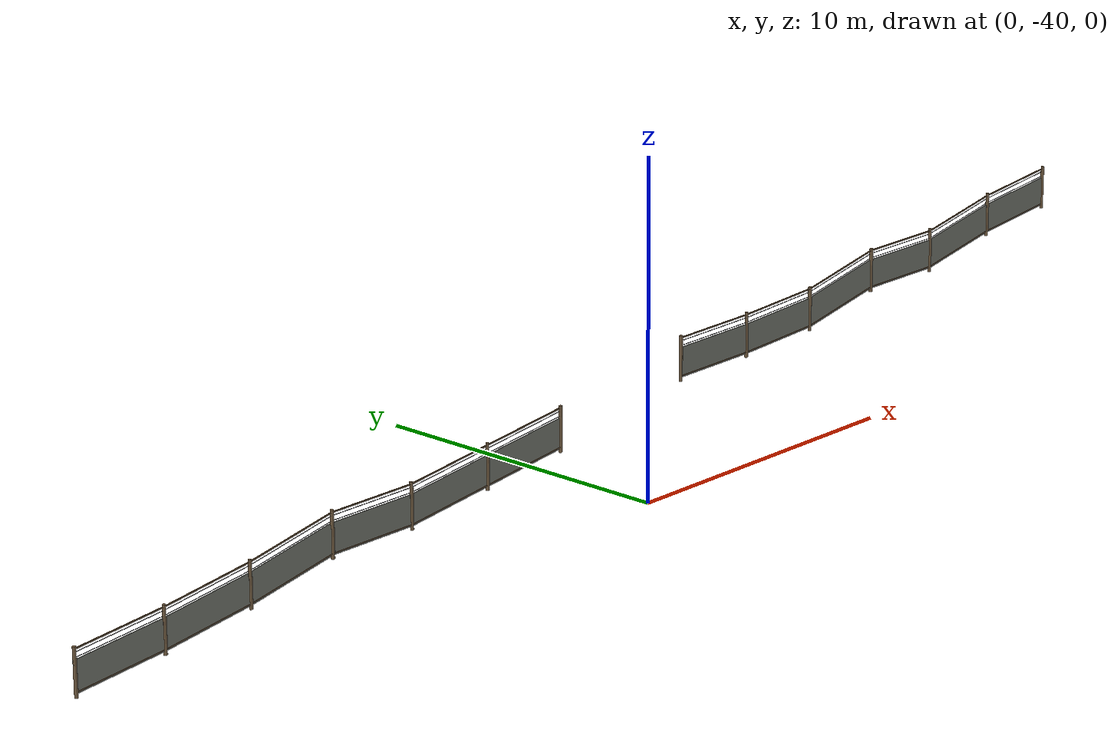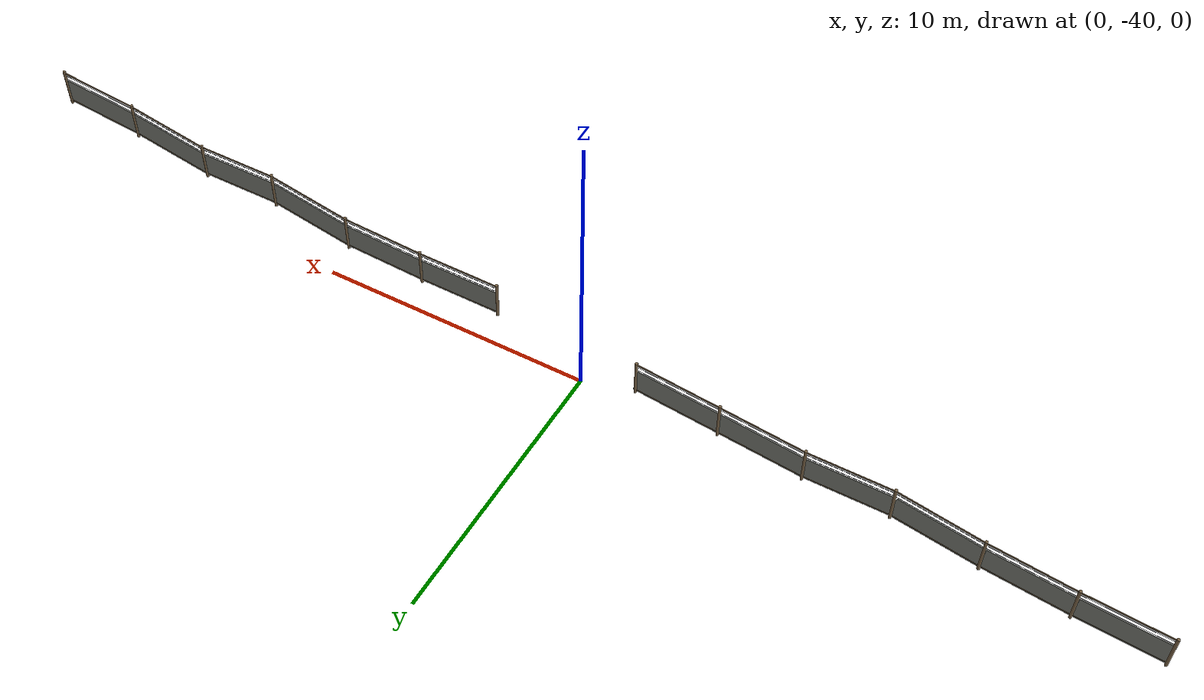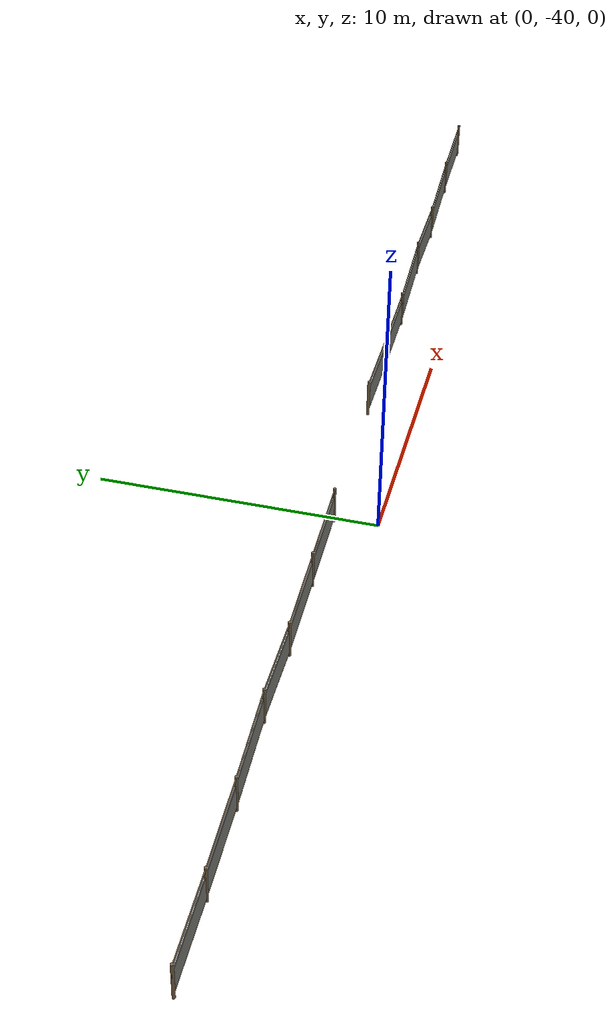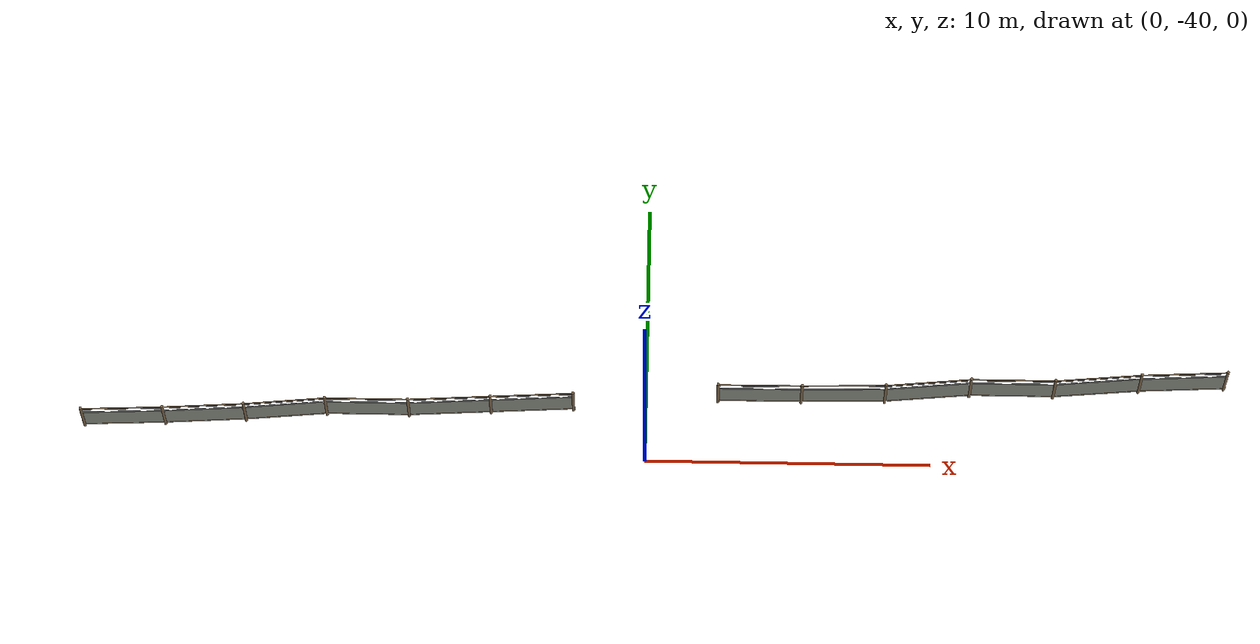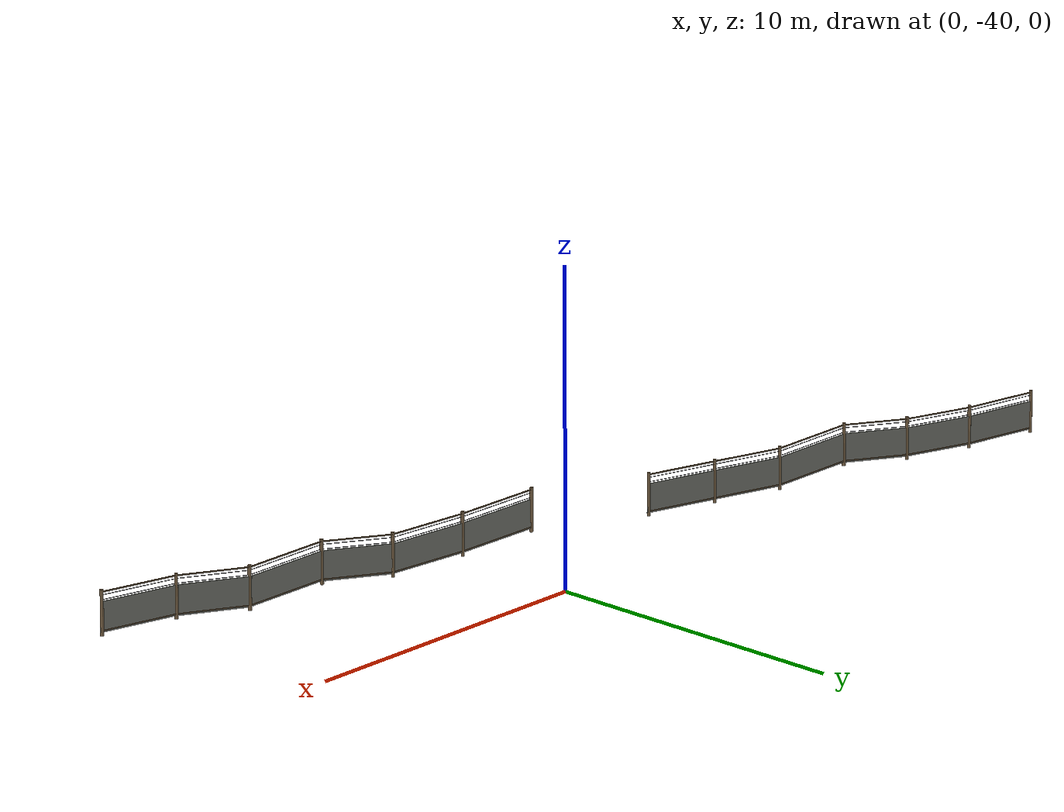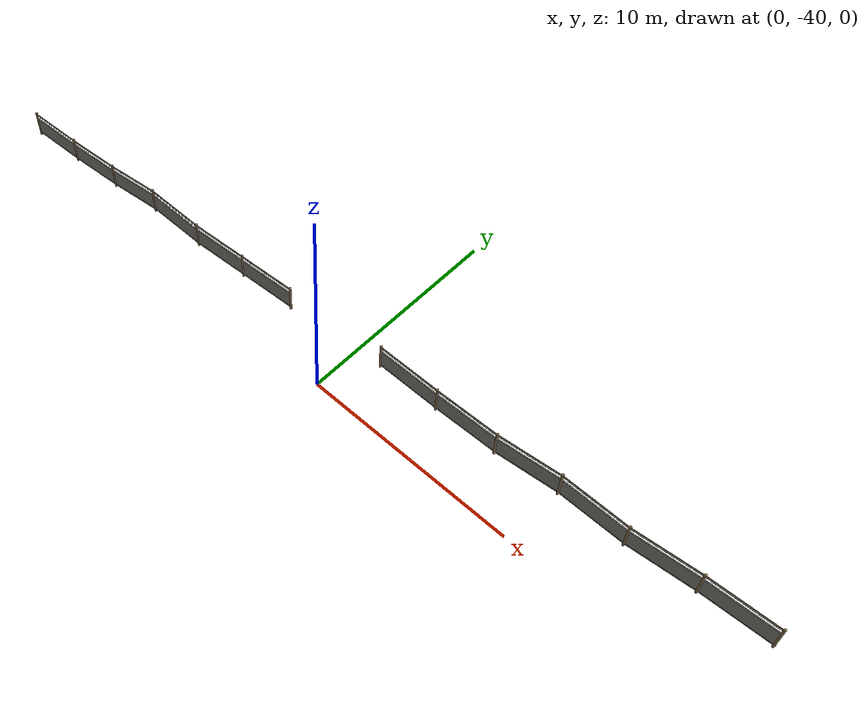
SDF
<sdf version="1.9">
 <world name="orchard_10x41">
  <model name="fence_S">
   <static>true</static>
   <link name="link">
    <visual name="post_1">
     <pose>-19.750 -39.000 0.785 0.0000 0.0000 0.0000</pose>
     <geometry><cylinder><radius>0.0500</radius><length>1.3500</length></cylinder></geometry>
     <material>
      <ambient>0.420 0.340 0.240 1</ambient>
      <diffuse>0.462 0.374 0.264 1</diffuse>
      <specular>0.126 0.102 0.072 1</specular>
     </material>
     <plugin filename="gz-sim-label-system" name="gz::sim::systems::Label"><label>60</label></plugin>
    </visual>
    <visual name="post_2">
     <pose>-16.875 -39.000 1.025 0.0000 0.0000 0.0000</pose>
     <geometry><cylinder><radius>0.0500</radius><length>1.3500</length></cylinder></geometry>
     <material>
      <ambient>0.420 0.340 0.240 1</ambient>
      <diffuse>0.462 0.374 0.264 1</diffuse>
      <specular>0.126 0.102 0.072 1</specular>
     </material>
     <plugin filename="gz-sim-label-system" name="gz::sim::systems::Label"><label>60</label></plugin>
    </visual>
    <visual name="post_3">
     <pose>-14.000 -39.000 1.392 0.0000 0.0000 0.0000</pose>
     <geometry><cylinder><radius>0.0500</radius><length>1.3500</length></cylinder></geometry>
     <material>
      <ambient>0.420 0.340 0.240 1</ambient>
      <diffuse>0.462 0.374 0.264 1</diffuse>
      <specular>0.126 0.102 0.072 1</specular>
     </material>
     <plugin filename="gz-sim-label-system" name="gz::sim::systems::Label"><label>60</label></plugin>
    </visual>
    <visual name="post_4">
     <pose>-11.125 -39.000 1.938 0.0000 0.0000 0.0000</pose>
     <geometry><cylinder><radius>0.0500</radius><length>1.3500</length></cylinder></geometry>
     <material>
      <ambient>0.420 0.340 0.240 1</ambient>
      <diffuse>0.462 0.374 0.264 1</diffuse>
      <specular>0.126 0.102 0.072 1</specular>
     </material>
     <plugin filename="gz-sim-label-system" name="gz::sim::systems::Label"><label>60</label></plugin>
    </visual>
    <visual name="post_5">
     <pose>-8.250 -39.000 1.937 0.0000 0.0000 0.0000</pose>
     <geometry><cylinder><radius>0.0500</radius><length>1.3500</length></cylinder></geometry>
     <material>
      <ambient>0.420 0.340 0.240 1</ambient>
      <diffuse>0.462 0.374 0.264 1</diffuse>
      <specular>0.126 0.102 0.072 1</specular>
     </material>
     <plugin filename="gz-sim-label-system" name="gz::sim::systems::Label"><label>60</label></plugin>
    </visual>
    <visual name="post_6">
     <pose>-5.375 -39.000 2.276 0.0000 0.0000 0.0000</pose>
     <geometry><cylinder><radius>0.0500</radius><length>1.3500</length></cylinder></geometry>
     <material>
      <ambient>0.420 0.340 0.240 1</ambient>
      <diffuse>0.462 0.374 0.264 1</diffuse>
      <specular>0.126 0.102 0.072 1</specular>
     </material>
     <plugin filename="gz-sim-label-system" name="gz::sim::systems::Label"><label>60</label></plugin>
    </visual>
    <visual name="post_7">
     <pose>-2.500 -39.000 2.610 0.0000 0.0000 0.0000</pose>
     <geometry><cylinder><radius>0.0500</radius><length>1.3500</length></cylinder></geometry>
     <material>
      <ambient>0.420 0.340 0.240 1</ambient>
      <diffuse>0.462 0.374 0.264 1</diffuse>
      <specular>0.126 0.102 0.072 1</specular>
     </material>
     <plugin filename="gz-sim-label-system" name="gz::sim::systems::Label"><label>60</label></plugin>
    </visual>
    <visual name="mesh_8">
     <pose>-18.312 -39.000 0.780 0.0000 -0.0836 0.0000</pose>
     <geometry><box><size>2.9325 0.0200 0.9000</size></box></geometry>
     <material>
      <ambient>0.460 0.470 0.440 1</ambient>
      <diffuse>0.506 0.517 0.484 1</diffuse>
      <specular>0.138 0.141 0.132 1</specular>
     </material>
     <plugin filename="gz-sim-label-system" name="gz::sim::systems::Label"><label>60</label></plugin>
    </visual>
    <visual name="rail_9">
     <pose>-18.312 -39.000 0.380 0.0000 -0.0836 0.0000</pose>
     <geometry><box><size>2.9325 0.0350 0.0350</size></box></geometry>
     <material>
      <ambient>0.380 0.310 0.220 1</ambient>
      <diffuse>0.418 0.341 0.242 1</diffuse>
      <specular>0.114 0.093 0.066 1</specular>
     </material>
     <plugin filename="gz-sim-label-system" name="gz::sim::systems::Label"><label>60</label></plugin>
    </visual>
    <visual name="rail_10">
     <pose>-18.312 -39.000 1.510 0.0000 -0.0836 0.0000</pose>
     <geometry><box><size>2.9325 0.0350 0.0350</size></box></geometry>
     <material>
      <ambient>0.380 0.310 0.220 1</ambient>
      <diffuse>0.418 0.341 0.242 1</diffuse>
      <specular>0.114 0.093 0.066 1</specular>
     </material>
     <plugin filename="gz-sim-label-system" name="gz::sim::systems::Label"><label>60</label></plugin>
    </visual>
    <visual name="wire_11">
     <pose>-18.312 -39.000 1.280 0.0000 -0.0836 0.0000</pose>
     <geometry><box><size>2.9325 0.0120 0.0120</size></box></geometry>
     <material>
      <ambient>0.300 0.300 0.320 1</ambient>
      <diffuse>0.330 0.330 0.352 1</diffuse>
      <specular>0.090 0.090 0.096 1</specular>
     </material>
     <plugin filename="gz-sim-label-system" name="gz::sim::systems::Label"><label>60</label></plugin>
    </visual>
    <visual name="wire_12">
     <pose>-18.312 -39.000 1.420 0.0000 -0.0836 0.0000</pose>
     <geometry><box><size>2.9325 0.0120 0.0120</size></box></geometry>
     <material>
      <ambient>0.300 0.300 0.320 1</ambient>
      <diffuse>0.330 0.330 0.352 1</diffuse>
      <specular>0.090 0.090 0.096 1</specular>
     </material>
     <plugin filename="gz-sim-label-system" name="gz::sim::systems::Label"><label>60</label></plugin>
    </visual>
    <visual name="mesh_13">
     <pose>-15.438 -39.000 1.084 0.0000 -0.1268 0.0000</pose>
     <geometry><box><size>2.9325 0.0200 0.9000</size></box></geometry>
     <material>
      <ambient>0.460 0.470 0.440 1</ambient>
      <diffuse>0.506 0.517 0.484 1</diffuse>
      <specular>0.138 0.141 0.132 1</specular>
     </material>
     <plugin filename="gz-sim-label-system" name="gz::sim::systems::Label"><label>60</label></plugin>
    </visual>
    <visual name="rail_14">
     <pose>-15.438 -39.000 0.684 0.0000 -0.1268 0.0000</pose>
     <geometry><box><size>2.9325 0.0350 0.0350</size></box></geometry>
     <material>
      <ambient>0.380 0.310 0.220 1</ambient>
      <diffuse>0.418 0.341 0.242 1</diffuse>
      <specular>0.114 0.093 0.066 1</specular>
     </material>
     <plugin filename="gz-sim-label-system" name="gz::sim::systems::Label"><label>60</label></plugin>
    </visual>
    <visual name="rail_15">
     <pose>-15.438 -39.000 1.814 0.0000 -0.1268 0.0000</pose>
     <geometry><box><size>2.9325 0.0350 0.0350</size></box></geometry>
     <material>
      <ambient>0.380 0.310 0.220 1</ambient>
      <diffuse>0.418 0.341 0.242 1</diffuse>
      <specular>0.114 0.093 0.066 1</specular>
     </material>
     <plugin filename="gz-sim-label-system" name="gz::sim::systems::Label"><label>60</label></plugin>
    </visual>
    <visual name="wire_16">
     <pose>-15.438 -39.000 1.584 0.0000 -0.1268 0.0000</pose>
     <geometry><box><size>2.9325 0.0120 0.0120</size></box></geometry>
     <material>
      <ambient>0.300 0.300 0.320 1</ambient>
      <diffuse>0.330 0.330 0.352 1</diffuse>
      <specular>0.090 0.090 0.096 1</specular>
     </material>
     <plugin filename="gz-sim-label-system" name="gz::sim::systems::Label"><label>60</label></plugin>
    </visual>
    <visual name="wire_17">
     <pose>-15.438 -39.000 1.724 0.0000 -0.1268 0.0000</pose>
     <geometry><box><size>2.9325 0.0120 0.0120</size></box></geometry>
     <material>
      <ambient>0.300 0.300 0.320 1</ambient>
      <diffuse>0.330 0.330 0.352 1</diffuse>
      <specular>0.090 0.090 0.096 1</specular>
     </material>
     <plugin filename="gz-sim-label-system" name="gz::sim::systems::Label"><label>60</label></plugin>
    </visual>
    <visual name="mesh_18">
     <pose>-12.562 -39.000 1.540 0.0000 -0.1877 0.0000</pose>
     <geometry><box><size>2.9325 0.0200 0.9000</size></box></geometry>
     <material>
      <ambient>0.460 0.470 0.440 1</ambient>
      <diffuse>0.506 0.517 0.484 1</diffuse>
      <specular>0.138 0.141 0.132 1</specular>
     </material>
     <plugin filename="gz-sim-label-system" name="gz::sim::systems::Label"><label>60</label></plugin>
    </visual>
    <visual name="rail_19">
     <pose>-12.562 -39.000 1.140 0.0000 -0.1877 0.0000</pose>
     <geometry><box><size>2.9325 0.0350 0.0350</size></box></geometry>
     <material>
      <ambient>0.380 0.310 0.220 1</ambient>
      <diffuse>0.418 0.341 0.242 1</diffuse>
      <specular>0.114 0.093 0.066 1</specular>
     </material>
     <plugin filename="gz-sim-label-system" name="gz::sim::systems::Label"><label>60</label></plugin>
    </visual>
    <visual name="rail_20">
     <pose>-12.562 -39.000 2.270 0.0000 -0.1877 0.0000</pose>
     <geometry><box><size>2.9325 0.0350 0.0350</size></box></geometry>
     <material>
      <ambient>0.380 0.310 0.220 1</ambient>
      <diffuse>0.418 0.341 0.242 1</diffuse>
      <specular>0.114 0.093 0.066 1</specular>
     </material>
     <plugin filename="gz-sim-label-system" name="gz::sim::systems::Label"><label>60</label></plugin>
    </visual>
    <visual name="wire_21">
     <pose>-12.562 -39.000 2.040 0.0000 -0.1877 0.0000</pose>
     <geometry><box><size>2.9325 0.0120 0.0120</size></box></geometry>
     <material>
      <ambient>0.300 0.300 0.320 1</ambient>
      <diffuse>0.330 0.330 0.352 1</diffuse>
      <specular>0.090 0.090 0.096 1</specular>
     </material>
     <plugin filename="gz-sim-label-system" name="gz::sim::systems::Label"><label>60</label></plugin>
    </visual>
    <visual name="wire_22">
     <pose>-12.562 -39.000 2.180 0.0000 -0.1877 0.0000</pose>
     <geometry><box><size>2.9325 0.0120 0.0120</size></box></geometry>
     <material>
      <ambient>0.300 0.300 0.320 1</ambient>
      <diffuse>0.330 0.330 0.352 1</diffuse>
      <specular>0.090 0.090 0.096 1</specular>
     </material>
     <plugin filename="gz-sim-label-system" name="gz::sim::systems::Label"><label>60</label></plugin>
    </visual>
    <visual name="mesh_23">
     <pose>-9.688 -39.000 1.813 0.0000 0.0003 0.0000</pose>
     <geometry><box><size>2.9325 0.0200 0.9000</size></box></geometry>
     <material>
      <ambient>0.460 0.470 0.440 1</ambient>
      <diffuse>0.506 0.517 0.484 1</diffuse>
      <specular>0.138 0.141 0.132 1</specular>
     </material>
     <plugin filename="gz-sim-label-system" name="gz::sim::systems::Label"><label>60</label></plugin>
    </visual>
    <visual name="rail_24">
     <pose>-9.688 -39.000 1.413 0.0000 0.0003 0.0000</pose>
     <geometry><box><size>2.9325 0.0350 0.0350</size></box></geometry>
     <material>
      <ambient>0.380 0.310 0.220 1</ambient>
      <diffuse>0.418 0.341 0.242 1</diffuse>
      <specular>0.114 0.093 0.066 1</specular>
     </material>
     <plugin filename="gz-sim-label-system" name="gz::sim::systems::Label"><label>60</label></plugin>
    </visual>
    <visual name="rail_25">
     <pose>-9.688 -39.000 2.543 0.0000 0.0003 0.0000</pose>
     <geometry><box><size>2.9325 0.0350 0.0350</size></box></geometry>
     <material>
      <ambient>0.380 0.310 0.220 1</ambient>
      <diffuse>0.418 0.341 0.242 1</diffuse>
      <specular>0.114 0.093 0.066 1</specular>
     </material>
     <plugin filename="gz-sim-label-system" name="gz::sim::systems::Label"><label>60</label></plugin>
    </visual>
    <visual name="wire_26">
     <pose>-9.688 -39.000 2.313 0.0000 0.0003 0.0000</pose>
     <geometry><box><size>2.9325 0.0120 0.0120</size></box></geometry>
     <material>
      <ambient>0.300 0.300 0.320 1</ambient>
      <diffuse>0.330 0.330 0.352 1</diffuse>
      <specular>0.090 0.090 0.096 1</specular>
     </material>
     <plugin filename="gz-sim-label-system" name="gz::sim::systems::Label"><label>60</label></plugin>
    </visual>
    <visual name="wire_27">
     <pose>-9.688 -39.000 2.453 0.0000 0.0003 0.0000</pose>
     <geometry><box><size>2.9325 0.0120 0.0120</size></box></geometry>
     <material>
      <ambient>0.300 0.300 0.320 1</ambient>
      <diffuse>0.330 0.330 0.352 1</diffuse>
      <specular>0.090 0.090 0.096 1</specular>
     </material>
     <plugin filename="gz-sim-label-system" name="gz::sim::systems::Label"><label>60</label></plugin>
    </visual>
    <visual name="mesh_28">
     <pose>-6.812 -39.000 1.982 0.0000 -0.1172 0.0000</pose>
     <geometry><box><size>2.9325 0.0200 0.9000</size></box></geometry>
     <material>
      <ambient>0.460 0.470 0.440 1</ambient>
      <diffuse>0.506 0.517 0.484 1</diffuse>
      <specular>0.138 0.141 0.132 1</specular>
     </material>
     <plugin filename="gz-sim-label-system" name="gz::sim::systems::Label"><label>60</label></plugin>
    </visual>
    <visual name="rail_29">
     <pose>-6.812 -39.000 1.582 0.0000 -0.1172 0.0000</pose>
     <geometry><box><size>2.9325 0.0350 0.0350</size></box></geometry>
     <material>
      <ambient>0.380 0.310 0.220 1</ambient>
      <diffuse>0.418 0.341 0.242 1</diffuse>
      <specular>0.114 0.093 0.066 1</specular>
     </material>
     <plugin filename="gz-sim-label-system" name="gz::sim::systems::Label"><label>60</label></plugin>
    </visual>
    <visual name="rail_30">
     <pose>-6.812 -39.000 2.712 0.0000 -0.1172 0.0000</pose>
     <geometry><box><size>2.9325 0.0350 0.0350</size></box></geometry>
     <material>
      <ambient>0.380 0.310 0.220 1</ambient>
      <diffuse>0.418 0.341 0.242 1</diffuse>
      <specular>0.114 0.093 0.066 1</specular>
     </material>
     <plugin filename="gz-sim-label-system" name="gz::sim::systems::Label"><label>60</label></plugin>
    </visual>
    <visual name="wire_31">
     <pose>-6.812 -39.000 2.482 0.0000 -0.1172 0.0000</pose>
     <geometry><box><size>2.9325 0.0120 0.0120</size></box></geometry>
     <material>
      <ambient>0.300 0.300 0.320 1</ambient>
      <diffuse>0.330 0.330 0.352 1</diffuse>
      <specular>0.090 0.090 0.096 1</specular>
     </material>
     <plugin filename="gz-sim-label-system" name="gz::sim::systems::Label"><label>60</label></plugin>
    </visual>
    <visual name="wire_32">
     <pose>-6.812 -39.000 2.622 0.0000 -0.1172 0.0000</pose>
     <geometry><box><size>2.9325 0.0120 0.0120</size></box></geometry>
     <material>
      <ambient>0.300 0.300 0.320 1</ambient>
      <diffuse>0.330 0.330 0.352 1</diffuse>
      <specular>0.090 0.090 0.096 1</specular>
     </material>
     <plugin filename="gz-sim-label-system" name="gz::sim::systems::Label"><label>60</label></plugin>
    </visual>
    <visual name="mesh_33">
     <pose>-3.938 -39.000 2.318 0.0000 -0.1159 0.0000</pose>
     <geometry><box><size>2.9325 0.0200 0.9000</size></box></geometry>
     <material>
      <ambient>0.460 0.470 0.440 1</ambient>
      <diffuse>0.506 0.517 0.484 1</diffuse>
      <specular>0.138 0.141 0.132 1</specular>
     </material>
     <plugin filename="gz-sim-label-system" name="gz::sim::systems::Label"><label>60</label></plugin>
    </visual>
    <visual name="rail_34">
     <pose>-3.938 -39.000 1.918 0.0000 -0.1159 0.0000</pose>
     <geometry><box><size>2.9325 0.0350 0.0350</size></box></geometry>
     <material>
      <ambient>0.380 0.310 0.220 1</ambient>
      <diffuse>0.418 0.341 0.242 1</diffuse>
      <specular>0.114 0.093 0.066 1</specular>
     </material>
     <plugin filename="gz-sim-label-system" name="gz::sim::systems::Label"><label>60</label></plugin>
    </visual>
    <visual name="rail_35">
     <pose>-3.938 -39.000 3.048 0.0000 -0.1159 0.0000</pose>
     <geometry><box><size>2.9325 0.0350 0.0350</size></box></geometry>
     <material>
      <ambient>0.380 0.310 0.220 1</ambient>
      <diffuse>0.418 0.341 0.242 1</diffuse>
      <specular>0.114 0.093 0.066 1</specular>
     </material>
     <plugin filename="gz-sim-label-system" name="gz::sim::systems::Label"><label>60</label></plugin>
    </visual>
    <visual name="wire_36">
     <pose>-3.938 -39.000 2.818 0.0000 -0.1159 0.0000</pose>
     <geometry><box><size>2.9325 0.0120 0.0120</size></box></geometry>
     <material>
      <ambient>0.300 0.300 0.320 1</ambient>
      <diffuse>0.330 0.330 0.352 1</diffuse>
      <specular>0.090 0.090 0.096 1</specular>
     </material>
     <plugin filename="gz-sim-label-system" name="gz::sim::systems::Label"><label>60</label></plugin>
    </visual>
    <visual name="wire_37">
     <pose>-3.938 -39.000 2.958 0.0000 -0.1159 0.0000</pose>
     <geometry><box><size>2.9325 0.0120 0.0120</size></box></geometry>
     <material>
      <ambient>0.300 0.300 0.320 1</ambient>
      <diffuse>0.330 0.330 0.352 1</diffuse>
      <specular>0.090 0.090 0.096 1</specular>
     </material>
     <plugin filename="gz-sim-label-system" name="gz::sim::systems::Label"><label>60</label></plugin>
    </visual>
    <collision name="c0">
     <pose>-18.312 -39.000 0.905 0.0000 -0.0836 0.0000</pose>
     <geometry><box><size>2.8750 0.0600 1.3500</size></box></geometry>
    </collision>
    <collision name="c1">
     <pose>-15.438 -39.000 1.209 0.0000 -0.1268 0.0000</pose>
     <geometry><box><size>2.8750 0.0600 1.3500</size></box></geometry>
    </collision>
    <collision name="c2">
     <pose>-12.562 -39.000 1.665 0.0000 -0.1877 0.0000</pose>
     <geometry><box><size>2.8750 0.0600 1.3500</size></box></geometry>
    </collision>
    <collision name="c3">
     <pose>-9.688 -39.000 1.938 0.0000 0.0003 0.0000</pose>
     <geometry><box><size>2.8750 0.0600 1.3500</size></box></geometry>
    </collision>
    <collision name="c4">
     <pose>-6.812 -39.000 2.107 0.0000 -0.1172 0.0000</pose>
     <geometry><box><size>2.8750 0.0600 1.3500</size></box></geometry>
    </collision>
    <collision name="c5">
     <pose>-3.938 -39.000 2.443 0.0000 -0.1159 0.0000</pose>
     <geometry><box><size>2.8750 0.0600 1.3500</size></box></geometry>
    </collision>
   </link>
  </model>
  <model name="fence_S2">
   <static>true</static>
   <link name="link">
    <visual name="post_1">
     <pose>2.500 -39.000 3.447 0.0000 0.0000 0.0000</pose>
     <geometry><cylinder><radius>0.0500</radius><length>1.3500</length></cylinder></geometry>
     <material>
      <ambient>0.420 0.340 0.240 1</ambient>
      <diffuse>0.462 0.374 0.264 1</diffuse>
      <specular>0.126 0.102 0.072 1</specular>
     </material>
     <plugin filename="gz-sim-label-system" name="gz::sim::systems::Label"><label>60</label></plugin>
    </visual>
    <visual name="post_2">
     <pose>5.375 -39.000 3.471 0.0000 0.0000 0.0000</pose>
     <geometry><cylinder><radius>0.0500</radius><length>1.3500</length></cylinder></geometry>
     <material>
      <ambient>0.420 0.340 0.240 1</ambient>
      <diffuse>0.462 0.374 0.264 1</diffuse>
      <specular>0.126 0.102 0.072 1</specular>
     </material>
     <plugin filename="gz-sim-label-system" name="gz::sim::systems::Label"><label>60</label></plugin>
    </visual>
    <visual name="post_3">
     <pose>8.250 -39.000 3.603 0.0000 0.0000 0.0000</pose>
     <geometry><cylinder><radius>0.0500</radius><length>1.3500</length></cylinder></geometry>
     <material>
      <ambient>0.420 0.340 0.240 1</ambient>
      <diffuse>0.462 0.374 0.264 1</diffuse>
      <specular>0.126 0.102 0.072 1</specular>
     </material>
     <plugin filename="gz-sim-label-system" name="gz::sim::systems::Label"><label>60</label></plugin>
    </visual>
    <visual name="post_4">
     <pose>11.125 -39.000 4.157 0.0000 0.0000 0.0000</pose>
     <geometry><cylinder><radius>0.0500</radius><length>1.3500</length></cylinder></geometry>
     <material>
      <ambient>0.420 0.340 0.240 1</ambient>
      <diffuse>0.462 0.374 0.264 1</diffuse>
      <specular>0.126 0.102 0.072 1</specular>
     </material>
     <plugin filename="gz-sim-label-system" name="gz::sim::systems::Label"><label>60</label></plugin>
    </visual>
    <visual name="post_5">
     <pose>14.000 -39.000 4.156 0.0000 0.0000 0.0000</pose>
     <geometry><cylinder><radius>0.0500</radius><length>1.3500</length></cylinder></geometry>
     <material>
      <ambient>0.420 0.340 0.240 1</ambient>
      <diffuse>0.462 0.374 0.264 1</diffuse>
      <specular>0.126 0.102 0.072 1</specular>
     </material>
     <plugin filename="gz-sim-label-system" name="gz::sim::systems::Label"><label>60</label></plugin>
    </visual>
    <visual name="post_6">
     <pose>16.875 -39.000 4.683 0.0000 0.0000 0.0000</pose>
     <geometry><cylinder><radius>0.0500</radius><length>1.3500</length></cylinder></geometry>
     <material>
      <ambient>0.420 0.340 0.240 1</ambient>
      <diffuse>0.462 0.374 0.264 1</diffuse>
      <specular>0.126 0.102 0.072 1</specular>
     </material>
     <plugin filename="gz-sim-label-system" name="gz::sim::systems::Label"><label>60</label></plugin>
    </visual>
    <visual name="post_7">
     <pose>19.750 -39.000 4.973 0.0000 0.0000 0.0000</pose>
     <geometry><cylinder><radius>0.0500</radius><length>1.3500</length></cylinder></geometry>
     <material>
      <ambient>0.420 0.340 0.240 1</ambient>
      <diffuse>0.462 0.374 0.264 1</diffuse>
      <specular>0.126 0.102 0.072 1</specular>
     </material>
     <plugin filename="gz-sim-label-system" name="gz::sim::systems::Label"><label>60</label></plugin>
    </visual>
    <visual name="mesh_8">
     <pose>3.938 -39.000 3.334 0.0000 -0.0081 0.0000</pose>
     <geometry><box><size>2.9325 0.0200 0.9000</size></box></geometry>
     <material>
      <ambient>0.460 0.470 0.440 1</ambient>
      <diffuse>0.506 0.517 0.484 1</diffuse>
      <specular>0.138 0.141 0.132 1</specular>
     </material>
     <plugin filename="gz-sim-label-system" name="gz::sim::systems::Label"><label>60</label></plugin>
    </visual>
    <visual name="rail_9">
     <pose>3.938 -39.000 2.934 0.0000 -0.0081 0.0000</pose>
     <geometry><box><size>2.9325 0.0350 0.0350</size></box></geometry>
     <material>
      <ambient>0.380 0.310 0.220 1</ambient>
      <diffuse>0.418 0.341 0.242 1</diffuse>
      <specular>0.114 0.093 0.066 1</specular>
     </material>
     <plugin filename="gz-sim-label-system" name="gz::sim::systems::Label"><label>60</label></plugin>
    </visual>
    <visual name="rail_10">
     <pose>3.938 -39.000 4.064 0.0000 -0.0081 0.0000</pose>
     <geometry><box><size>2.9325 0.0350 0.0350</size></box></geometry>
     <material>
      <ambient>0.380 0.310 0.220 1</ambient>
      <diffuse>0.418 0.341 0.242 1</diffuse>
      <specular>0.114 0.093 0.066 1</specular>
     </material>
     <plugin filename="gz-sim-label-system" name="gz::sim::systems::Label"><label>60</label></plugin>
    </visual>
    <visual name="wire_11">
     <pose>3.938 -39.000 3.834 0.0000 -0.0081 0.0000</pose>
     <geometry><box><size>2.9325 0.0120 0.0120</size></box></geometry>
     <material>
      <ambient>0.300 0.300 0.320 1</ambient>
      <diffuse>0.330 0.330 0.352 1</diffuse>
      <specular>0.090 0.090 0.096 1</specular>
     </material>
     <plugin filename="gz-sim-label-system" name="gz::sim::systems::Label"><label>60</label></plugin>
    </visual>
    <visual name="wire_12">
     <pose>3.938 -39.000 3.974 0.0000 -0.0081 0.0000</pose>
     <geometry><box><size>2.9325 0.0120 0.0120</size></box></geometry>
     <material>
      <ambient>0.300 0.300 0.320 1</ambient>
      <diffuse>0.330 0.330 0.352 1</diffuse>
      <specular>0.090 0.090 0.096 1</specular>
     </material>
     <plugin filename="gz-sim-label-system" name="gz::sim::systems::Label"><label>60</label></plugin>
    </visual>
    <visual name="mesh_13">
     <pose>6.812 -39.000 3.412 0.0000 -0.0462 0.0000</pose>
     <geometry><box><size>2.9325 0.0200 0.9000</size></box></geometry>
     <material>
      <ambient>0.460 0.470 0.440 1</ambient>
      <diffuse>0.506 0.517 0.484 1</diffuse>
      <specular>0.138 0.141 0.132 1</specular>
     </material>
     <plugin filename="gz-sim-label-system" name="gz::sim::systems::Label"><label>60</label></plugin>
    </visual>
    <visual name="rail_14">
     <pose>6.812 -39.000 3.012 0.0000 -0.0462 0.0000</pose>
     <geometry><box><size>2.9325 0.0350 0.0350</size></box></geometry>
     <material>
      <ambient>0.380 0.310 0.220 1</ambient>
      <diffuse>0.418 0.341 0.242 1</diffuse>
      <specular>0.114 0.093 0.066 1</specular>
     </material>
     <plugin filename="gz-sim-label-system" name="gz::sim::systems::Label"><label>60</label></plugin>
    </visual>
    <visual name="rail_15">
     <pose>6.812 -39.000 4.142 0.0000 -0.0462 0.0000</pose>
     <geometry><box><size>2.9325 0.0350 0.0350</size></box></geometry>
     <material>
      <ambient>0.380 0.310 0.220 1</ambient>
      <diffuse>0.418 0.341 0.242 1</diffuse>
      <specular>0.114 0.093 0.066 1</specular>
     </material>
     <plugin filename="gz-sim-label-system" name="gz::sim::systems::Label"><label>60</label></plugin>
    </visual>
    <visual name="wire_16">
     <pose>6.812 -39.000 3.912 0.0000 -0.0462 0.0000</pose>
     <geometry><box><size>2.9325 0.0120 0.0120</size></box></geometry>
     <material>
      <ambient>0.300 0.300 0.320 1</ambient>
      <diffuse>0.330 0.330 0.352 1</diffuse>
      <specular>0.090 0.090 0.096 1</specular>
     </material>
     <plugin filename="gz-sim-label-system" name="gz::sim::systems::Label"><label>60</label></plugin>
    </visual>
    <visual name="wire_17">
     <pose>6.812 -39.000 4.052 0.0000 -0.0462 0.0000</pose>
     <geometry><box><size>2.9325 0.0120 0.0120</size></box></geometry>
     <material>
      <ambient>0.300 0.300 0.320 1</ambient>
      <diffuse>0.330 0.330 0.352 1</diffuse>
      <specular>0.090 0.090 0.096 1</specular>
     </material>
     <plugin filename="gz-sim-label-system" name="gz::sim::systems::Label"><label>60</label></plugin>
    </visual>
    <visual name="mesh_18">
     <pose>9.688 -39.000 3.755 0.0000 -0.1901 0.0000</pose>
     <geometry><box><size>2.9325 0.0200 0.9000</size></box></geometry>
     <material>
      <ambient>0.460 0.470 0.440 1</ambient>
      <diffuse>0.506 0.517 0.484 1</diffuse>
      <specular>0.138 0.141 0.132 1</specular>
     </material>
     <plugin filename="gz-sim-label-system" name="gz::sim::systems::Label"><label>60</label></plugin>
    </visual>
    <visual name="rail_19">
     <pose>9.688 -39.000 3.355 0.0000 -0.1901 0.0000</pose>
     <geometry><box><size>2.9325 0.0350 0.0350</size></box></geometry>
     <material>
      <ambient>0.380 0.310 0.220 1</ambient>
      <diffuse>0.418 0.341 0.242 1</diffuse>
      <specular>0.114 0.093 0.066 1</specular>
     </material>
     <plugin filename="gz-sim-label-system" name="gz::sim::systems::Label"><label>60</label></plugin>
    </visual>
    <visual name="rail_20">
     <pose>9.688 -39.000 4.485 0.0000 -0.1901 0.0000</pose>
     <geometry><box><size>2.9325 0.0350 0.0350</size></box></geometry>
     <material>
      <ambient>0.380 0.310 0.220 1</ambient>
      <diffuse>0.418 0.341 0.242 1</diffuse>
      <specular>0.114 0.093 0.066 1</specular>
     </material>
     <plugin filename="gz-sim-label-system" name="gz::sim::systems::Label"><label>60</label></plugin>
    </visual>
    <visual name="wire_21">
     <pose>9.688 -39.000 4.255 0.0000 -0.1901 0.0000</pose>
     <geometry><box><size>2.9325 0.0120 0.0120</size></box></geometry>
     <material>
      <ambient>0.300 0.300 0.320 1</ambient>
      <diffuse>0.330 0.330 0.352 1</diffuse>
      <specular>0.090 0.090 0.096 1</specular>
     </material>
     <plugin filename="gz-sim-label-system" name="gz::sim::systems::Label"><label>60</label></plugin>
    </visual>
    <visual name="wire_22">
     <pose>9.688 -39.000 4.395 0.0000 -0.1901 0.0000</pose>
     <geometry><box><size>2.9325 0.0120 0.0120</size></box></geometry>
     <material>
      <ambient>0.300 0.300 0.320 1</ambient>
      <diffuse>0.330 0.330 0.352 1</diffuse>
      <specular>0.090 0.090 0.096 1</specular>
     </material>
     <plugin filename="gz-sim-label-system" name="gz::sim::systems::Label"><label>60</label></plugin>
    </visual>
    <visual name="mesh_23">
     <pose>12.562 -39.000 4.032 0.0000 0.0001 0.0000</pose>
     <geometry><box><size>2.9325 0.0200 0.9000</size></box></geometry>
     <material>
      <ambient>0.460 0.470 0.440 1</ambient>
      <diffuse>0.506 0.517 0.484 1</diffuse>
      <specular>0.138 0.141 0.132 1</specular>
     </material>
     <plugin filename="gz-sim-label-system" name="gz::sim::systems::Label"><label>60</label></plugin>
    </visual>
    <visual name="rail_24">
     <pose>12.562 -39.000 3.632 0.0000 0.0001 0.0000</pose>
     <geometry><box><size>2.9325 0.0350 0.0350</size></box></geometry>
     <material>
      <ambient>0.380 0.310 0.220 1</ambient>
      <diffuse>0.418 0.341 0.242 1</diffuse>
      <specular>0.114 0.093 0.066 1</specular>
     </material>
     <plugin filename="gz-sim-label-system" name="gz::sim::systems::Label"><label>60</label></plugin>
    </visual>
    <visual name="rail_25">
     <pose>12.562 -39.000 4.762 0.0000 0.0001 0.0000</pose>
     <geometry><box><size>2.9325 0.0350 0.0350</size></box></geometry>
     <material>
      <ambient>0.380 0.310 0.220 1</ambient>
      <diffuse>0.418 0.341 0.242 1</diffuse>
      <specular>0.114 0.093 0.066 1</specular>
     </material>
     <plugin filename="gz-sim-label-system" name="gz::sim::systems::Label"><label>60</label></plugin>
    </visual>
    <visual name="wire_26">
     <pose>12.562 -39.000 4.532 0.0000 0.0001 0.0000</pose>
     <geometry><box><size>2.9325 0.0120 0.0120</size></box></geometry>
     <material>
      <ambient>0.300 0.300 0.320 1</ambient>
      <diffuse>0.330 0.330 0.352 1</diffuse>
      <specular>0.090 0.090 0.096 1</specular>
     </material>
     <plugin filename="gz-sim-label-system" name="gz::sim::systems::Label"><label>60</label></plugin>
    </visual>
    <visual name="wire_27">
     <pose>12.562 -39.000 4.672 0.0000 0.0001 0.0000</pose>
     <geometry><box><size>2.9325 0.0120 0.0120</size></box></geometry>
     <material>
      <ambient>0.300 0.300 0.320 1</ambient>
      <diffuse>0.330 0.330 0.352 1</diffuse>
      <specular>0.090 0.090 0.096 1</specular>
     </material>
     <plugin filename="gz-sim-label-system" name="gz::sim::systems::Label"><label>60</label></plugin>
    </visual>
    <visual name="mesh_28">
     <pose>15.438 -39.000 4.295 0.0000 -0.1811 0.0000</pose>
     <geometry><box><size>2.9325 0.0200 0.9000</size></box></geometry>
     <material>
      <ambient>0.460 0.470 0.440 1</ambient>
      <diffuse>0.506 0.517 0.484 1</diffuse>
      <specular>0.138 0.141 0.132 1</specular>
     </material>
     <plugin filename="gz-sim-label-system" name="gz::sim::systems::Label"><label>60</label></plugin>
    </visual>
    <visual name="rail_29">
     <pose>15.438 -39.000 3.895 0.0000 -0.1811 0.0000</pose>
     <geometry><box><size>2.9325 0.0350 0.0350</size></box></geometry>
     <material>
      <ambient>0.380 0.310 0.220 1</ambient>
      <diffuse>0.418 0.341 0.242 1</diffuse>
      <specular>0.114 0.093 0.066 1</specular>
     </material>
     <plugin filename="gz-sim-label-system" name="gz::sim::systems::Label"><label>60</label></plugin>
    </visual>
    <visual name="rail_30">
     <pose>15.438 -39.000 5.025 0.0000 -0.1811 0.0000</pose>
     <geometry><box><size>2.9325 0.0350 0.0350</size></box></geometry>
     <material>
      <ambient>0.380 0.310 0.220 1</ambient>
      <diffuse>0.418 0.341 0.242 1</diffuse>
      <specular>0.114 0.093 0.066 1</specular>
     </material>
     <plugin filename="gz-sim-label-system" name="gz::sim::systems::Label"><label>60</label></plugin>
    </visual>
    <visual name="wire_31">
     <pose>15.438 -39.000 4.795 0.0000 -0.1811 0.0000</pose>
     <geometry><box><size>2.9325 0.0120 0.0120</size></box></geometry>
     <material>
      <ambient>0.300 0.300 0.320 1</ambient>
      <diffuse>0.330 0.330 0.352 1</diffuse>
      <specular>0.090 0.090 0.096 1</specular>
     </material>
     <plugin filename="gz-sim-label-system" name="gz::sim::systems::Label"><label>60</label></plugin>
    </visual>
    <visual name="wire_32">
     <pose>15.438 -39.000 4.935 0.0000 -0.1811 0.0000</pose>
     <geometry><box><size>2.9325 0.0120 0.0120</size></box></geometry>
     <material>
      <ambient>0.300 0.300 0.320 1</ambient>
      <diffuse>0.330 0.330 0.352 1</diffuse>
      <specular>0.090 0.090 0.096 1</specular>
     </material>
     <plugin filename="gz-sim-label-system" name="gz::sim::systems::Label"><label>60</label></plugin>
    </visual>
    <visual name="mesh_33">
     <pose>18.312 -39.000 4.703 0.0000 -0.1006 0.0000</pose>
     <geometry><box><size>2.9325 0.0200 0.9000</size></box></geometry>
     <material>
      <ambient>0.460 0.470 0.440 1</ambient>
      <diffuse>0.506 0.517 0.484 1</diffuse>
      <specular>0.138 0.141 0.132 1</specular>
     </material>
     <plugin filename="gz-sim-label-system" name="gz::sim::systems::Label"><label>60</label></plugin>
    </visual>
    <visual name="rail_34">
     <pose>18.312 -39.000 4.303 0.0000 -0.1006 0.0000</pose>
     <geometry><box><size>2.9325 0.0350 0.0350</size></box></geometry>
     <material>
      <ambient>0.380 0.310 0.220 1</ambient>
      <diffuse>0.418 0.341 0.242 1</diffuse>
      <specular>0.114 0.093 0.066 1</specular>
     </material>
     <plugin filename="gz-sim-label-system" name="gz::sim::systems::Label"><label>60</label></plugin>
    </visual>
    <visual name="rail_35">
     <pose>18.312 -39.000 5.433 0.0000 -0.1006 0.0000</pose>
     <geometry><box><size>2.9325 0.0350 0.0350</size></box></geometry>
     <material>
      <ambient>0.380 0.310 0.220 1</ambient>
      <diffuse>0.418 0.341 0.242 1</diffuse>
      <specular>0.114 0.093 0.066 1</specular>
     </material>
     <plugin filename="gz-sim-label-system" name="gz::sim::systems::Label"><label>60</label></plugin>
    </visual>
    <visual name="wire_36">
     <pose>18.312 -39.000 5.203 0.0000 -0.1006 0.0000</pose>
     <geometry><box><size>2.9325 0.0120 0.0120</size></box></geometry>
     <material>
      <ambient>0.300 0.300 0.320 1</ambient>
      <diffuse>0.330 0.330 0.352 1</diffuse>
      <specular>0.090 0.090 0.096 1</specular>
     </material>
     <plugin filename="gz-sim-label-system" name="gz::sim::systems::Label"><label>60</label></plugin>
    </visual>
    <visual name="wire_37">
     <pose>18.312 -39.000 5.343 0.0000 -0.1006 0.0000</pose>
     <geometry><box><size>2.9325 0.0120 0.0120</size></box></geometry>
     <material>
      <ambient>0.300 0.300 0.320 1</ambient>
      <diffuse>0.330 0.330 0.352 1</diffuse>
      <specular>0.090 0.090 0.096 1</specular>
     </material>
     <plugin filename="gz-sim-label-system" name="gz::sim::systems::Label"><label>60</label></plugin>
    </visual>
    <collision name="c0">
     <pose>3.938 -39.000 3.459 0.0000 -0.0081 0.0000</pose>
     <geometry><box><size>2.8750 0.0600 1.3500</size></box></geometry>
    </collision>
    <collision name="c1">
     <pose>6.812 -39.000 3.537 0.0000 -0.0462 0.0000</pose>
     <geometry><box><size>2.8750 0.0600 1.3500</size></box></geometry>
    </collision>
    <collision name="c2">
     <pose>9.688 -39.000 3.880 0.0000 -0.1901 0.0000</pose>
     <geometry><box><size>2.8750 0.0600 1.3500</size></box></geometry>
    </collision>
    <collision name="c3">
     <pose>12.562 -39.000 4.157 0.0000 0.0001 0.0000</pose>
     <geometry><box><size>2.8750 0.0600 1.3500</size></box></geometry>
    </collision>
    <collision name="c4">
     <pose>15.438 -39.000 4.420 0.0000 -0.1811 0.0000</pose>
     <geometry><box><size>2.8750 0.0600 1.3500</size></box></geometry>
    </collision>
    <collision name="c5">
     <pose>18.312 -39.000 4.828 0.0000 -0.1006 0.0000</pose>
     <geometry><box><size>2.8750 0.0600 1.3500</size></box></geometry>
    </collision>
   </link>
  </model>
 </world>
</sdf>
